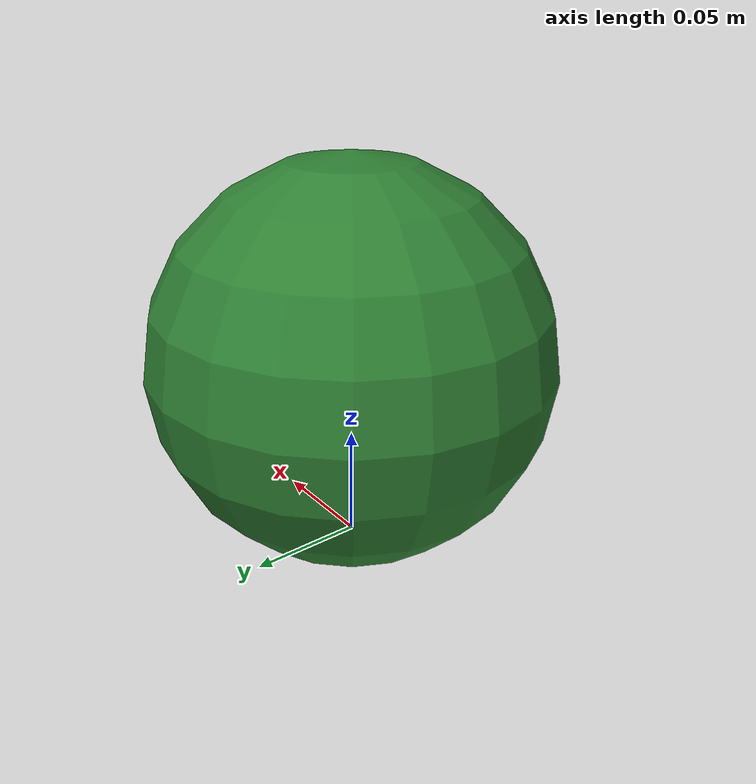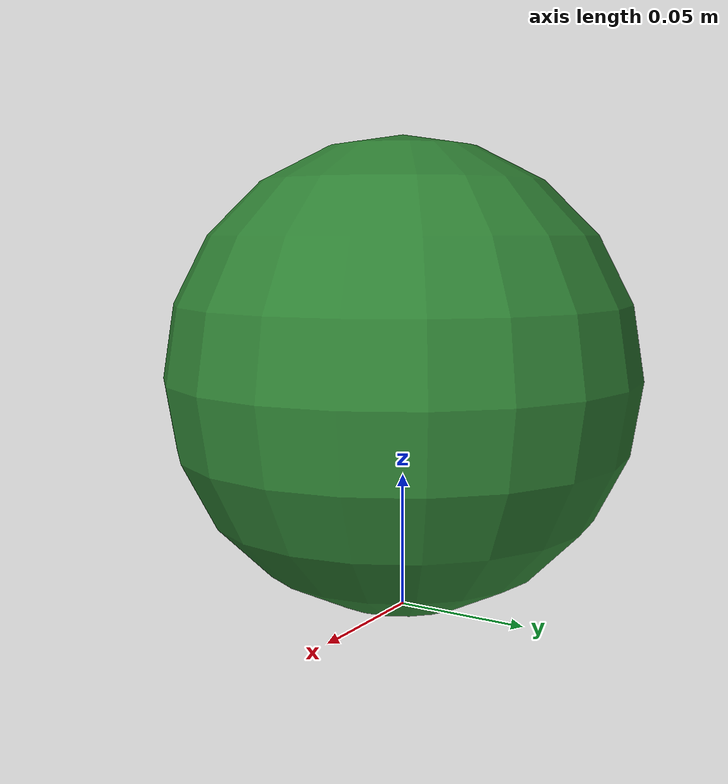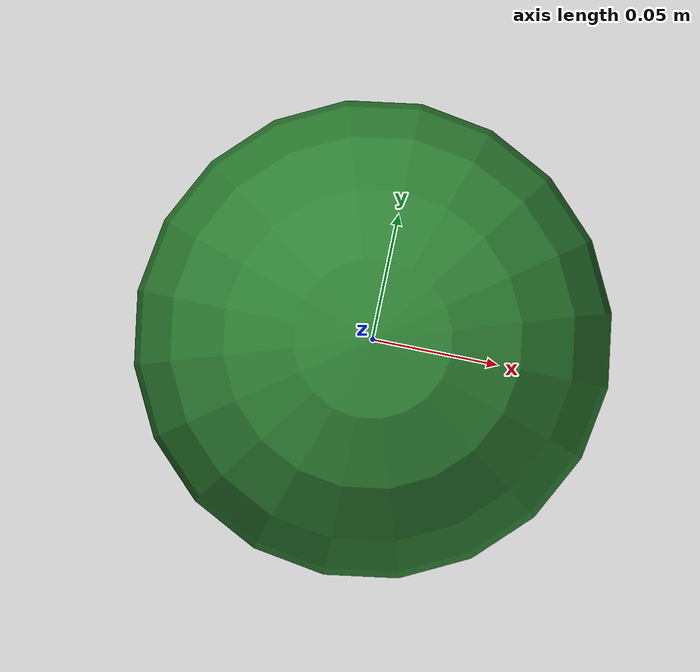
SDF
<sdf version="1.9">
  <model name="bush">
    <static>true</static>
    <link name="bush_link">
      <collision name="bush_collision">
        <pose>0 0 0.0875 0 0 0</pose>
        <geometry>
          <sphere>
            <radius>0.0875</radius>
          </sphere>
        </geometry>
      </collision>
      <visual name="bush_visual">
        <pose>0 0 0.0875 0 0 0</pose>
        <geometry>
          <sphere>
            <radius>0.0875</radius>
          </sphere>
        </geometry>
        <material>
          <ambient>0.18 0.50 0.20 1</ambient>
          <diffuse>0.18 0.50 0.20 1</diffuse>
          <specular>0.02 0.02 0.02 1</specular>
        </material>
      </visual>
    </link>
  </model>
</sdf>
